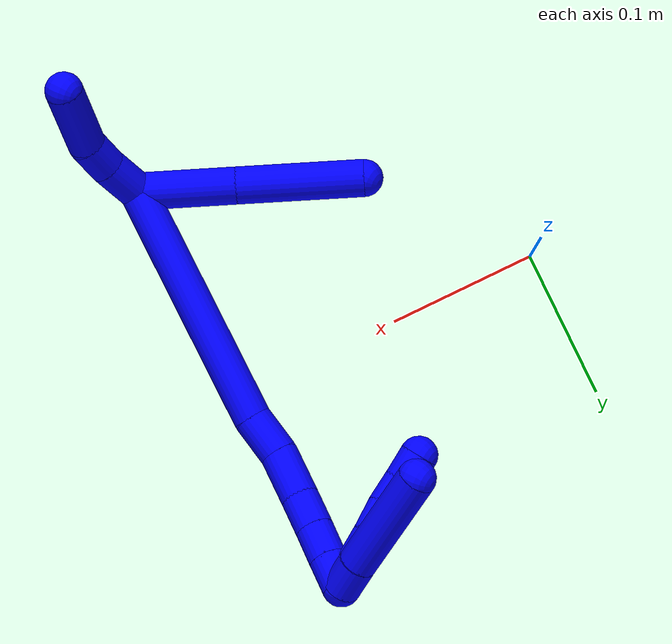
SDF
<sdf version="1.7">
 <world name="default">
  <model name="1">
   <static>0</static>
   <link name="1">
    <collision name="collision-cylinder-e_1_2_8">
     <pose>0.010722 -0.016586 -0.025929 2.57252 0.335211 1.04891</pose>
     <geometry><cylinder><radius>0.0125</radius><length>0.065188</length></cylinder></geometry>
     <surface>
      <friction><ode><mu>1.16</mu><mu2>1.16</mu2><slip1>0</slip1><slip2>0</slip2></ode></friction>
      <contact><ode><kp>1e+06</kp><kd>1</kd><max_vel>0</max_vel><min_depth>0.001</min_depth></ode></contact>
     </surface>
    </collision>
    <visual name="visual-cylinder-e_1_2_8">
     <pose>0.010722 -0.016586 -0.025929 2.57252 0.335211 1.04891</pose>
     <geometry><cylinder><radius>0.0125</radius><length>0.065188</length></cylinder></geometry>
     <material><ambient>0 0 1 1</ambient></material>
    </visual>
    <collision name="collision-cylinder-e_2_8_6">
     <pose>0.03364 -0.054523 -0.086407 2.58805 0.291712 0.954527</pose>
     <geometry><cylinder><radius>0.0125</radius><length>0.084812</length></cylinder></geometry>
     <surface>
      <friction><ode><mu>1.16</mu><mu2>1.16</mu2><slip1>0</slip1><slip2>0</slip2></ode></friction>
      <contact><ode><kp>1e+06</kp><kd>1</kd><max_vel>0</max_vel><min_depth>0.001</min_depth></ode></contact>
     </surface>
    </collision>
    <visual name="visual-cylinder-e_2_8_6">
     <pose>0.03364 -0.054523 -0.086407 2.58805 0.291712 0.954527</pose>
     <geometry><cylinder><radius>0.0125</radius><length>0.084812</length></cylinder></geometry>
     <material><ambient>0 0 1 1</ambient></material>
    </visual>
    <collision name="collision-cylinder-e_1_2_9">
     <pose>-0.012443 -0.002572 0.007745 0.320675 -0.990285 -0.174226</pose>
     <geometry><cylinder><radius>0.0125</radius><length>0.029761</length></cylinder></geometry>
     <surface>
      <friction><ode><mu>1.16</mu><mu2>1.16</mu2><slip1>0</slip1><slip2>0</slip2></ode></friction>
      <contact><ode><kp>1e+06</kp><kd>1</kd><max_vel>0</max_vel><min_depth>0.001</min_depth></ode></contact>
     </surface>
    </collision>
    <visual name="visual-cylinder-e_1_2_9">
     <pose>-0.012443 -0.002572 0.007745 0.320675 -0.990285 -0.174226</pose>
     <geometry><cylinder><radius>0.0125</radius><length>0.029761</length></cylinder></geometry>
     <material><ambient>0 0 1 1</ambient></material>
    </visual>
    <collision name="collision-cylinder-e_2_9_10">
     <pose>-0.03512 -0.008016 0.020112 0.55586 -1.08221 -0.339607</pose>
     <geometry><cylinder><radius>0.0125</radius><length>0.023182</length></cylinder></geometry>
     <surface>
      <friction><ode><mu>1.16</mu><mu2>1.16</mu2><slip1>0</slip1><slip2>0</slip2></ode></friction>
      <contact><ode><kp>1e+06</kp><kd>1</kd><max_vel>0</max_vel><min_depth>0.001</min_depth></ode></contact>
     </surface>
    </collision>
    <visual name="visual-cylinder-e_2_9_10">
     <pose>-0.03512 -0.008016 0.020112 0.55586 -1.08221 -0.339607</pose>
     <geometry><cylinder><radius>0.0125</radius><length>0.023182</length></cylinder></geometry>
     <material><ambient>0 0 1 1</ambient></material>
    </visual>
    <collision name="collision-cylinder-e_3_10_5">
     <pose>-0.065534 -0.021956 0.029619 1.15513 -1.03063 -0.707164</pose>
     <geometry><cylinder><radius>0.0125</radius><length>0.047057</length></cylinder></geometry>
     <surface>
      <friction><ode><mu>1.16</mu><mu2>1.16</mu2><slip1>0</slip1><slip2>0</slip2></ode></friction>
      <contact><ode><kp>1e+06</kp><kd>1</kd><max_vel>0</max_vel><min_depth>0.001</min_depth></ode></contact>
     </surface>
    </collision>
    <visual name="visual-cylinder-e_3_10_5">
     <pose>-0.065534 -0.021956 0.029619 1.15513 -1.03063 -0.707164</pose>
     <geometry><cylinder><radius>0.0125</radius><length>0.047057</length></cylinder></geometry>
     <material><ambient>0 0 1 1</ambient></material>
    </visual>
    <collision name="collision-cylinder-e_1_2_11">
     <pose>0.021866 0.049439 -0.064659 -2.4888 0.262451 -0.743549</pose>
     <geometry><cylinder><radius>0.0125</radius><length>0.16856</length></cylinder></geometry>
     <surface>
      <friction><ode><mu>1.16</mu><mu2>1.16</mu2><slip1>0</slip1><slip2>0</slip2></ode></friction>
      <contact><ode><kp>1e+06</kp><kd>1</kd><max_vel>0</max_vel><min_depth>0.001</min_depth></ode></contact>
     </surface>
    </collision>
    <visual name="visual-cylinder-e_1_2_11">
     <pose>0.021866 0.049439 -0.064659 -2.4888 0.262451 -0.743549</pose>
     <geometry><cylinder><radius>0.0125</radius><length>0.16856</length></cylinder></geometry>
     <material><ambient>0 0 1 1</ambient></material>
    </visual>
    <collision name="collision-cylinder-e_2_11_12">
     <pose>0.046587 0.10518 -0.142219 -2.68725 0.196236 -0.80514</pose>
     <geometry><cylinder><radius>0.0125</radius><length>0.029277</length></cylinder></geometry>
     <surface>
      <friction><ode><mu>1.16</mu><mu2>1.16</mu2><slip1>0</slip1><slip2>0</slip2></ode></friction>
      <contact><ode><kp>1e+06</kp><kd>1</kd><max_vel>0</max_vel><min_depth>0.001</min_depth></ode></contact>
     </surface>
    </collision>
    <visual name="visual-cylinder-e_2_11_12">
     <pose>0.046587 0.10518 -0.142219 -2.68725 0.196236 -0.80514</pose>
     <geometry><cylinder><radius>0.0125</radius><length>0.029277</length></cylinder></geometry>
     <material><ambient>0 0 1 1</ambient></material>
    </visual>
    <collision name="collision-cylinder-e_3_12_13">
     <pose>0.049496 0.120989 -0.168907 -2.53785 0.003298 -0.010591</pose>
     <geometry><cylinder><radius>0.0125</radius><length>0.033496</length></cylinder></geometry>
     <surface>
      <friction><ode><mu>1.16</mu><mu2>1.16</mu2><slip1>0</slip1><slip2>0</slip2></ode></friction>
      <contact><ode><kp>1e+06</kp><kd>1</kd><max_vel>0</max_vel><min_depth>0.001</min_depth></ode></contact>
     </surface>
    </collision>
    <visual name="visual-cylinder-e_3_12_13">
     <pose>0.049496 0.120989 -0.168907 -2.53785 0.003298 -0.010591</pose>
     <geometry><cylinder><radius>0.0125</radius><length>0.033496</length></cylinder></geometry>
     <material><ambient>0 0 1 1</ambient></material>
    </visual>
    <collision name="collision-cylinder-e_4_13_14">
     <pose>0.048449 0.137101 -0.192585 -2.55291 -0.092456 0.302868</pose>
     <geometry><cylinder><radius>0.0125</radius><length>0.023888</length></cylinder></geometry>
     <surface>
      <friction><ode><mu>1.16</mu><mu2>1.16</mu2><slip1>0</slip1><slip2>0</slip2></ode></friction>
      <contact><ode><kp>1e+06</kp><kd>1</kd><max_vel>0</max_vel><min_depth>0.001</min_depth></ode></contact>
     </surface>
    </collision>
    <visual name="visual-cylinder-e_4_13_14">
     <pose>0.048449 0.137101 -0.192585 -2.55291 -0.092456 0.302868</pose>
     <geometry><cylinder><radius>0.0125</radius><length>0.023888</length></cylinder></geometry>
     <material><ambient>0 0 1 1</ambient></material>
    </visual>
    <collision name="collision-cylinder-e_5_14_15">
     <pose>0.046068 0.150119 -0.211874 -2.54265 -0.111864 0.358784</pose>
     <geometry><cylinder><radius>0.0125</radius><length>0.022899</length></cylinder></geometry>
     <surface>
      <friction><ode><mu>1.16</mu><mu2>1.16</mu2><slip1>0</slip1><slip2>0</slip2></ode></friction>
      <contact><ode><kp>1e+06</kp><kd>1</kd><max_vel>0</max_vel><min_depth>0.001</min_depth></ode></contact>
     </surface>
    </collision>
    <visual name="visual-cylinder-e_5_14_15">
     <pose>0.046068 0.150119 -0.211874 -2.54265 -0.111864 0.358784</pose>
     <geometry><cylinder><radius>0.0125</radius><length>0.022899</length></cylinder></geometry>
     <material><ambient>0 0 1 1</ambient></material>
    </visual>
    <collision name="collision-cylinder-e_6_15_1">
     <pose>0.043495 0.16254 -0.230322 -2.55567 -0.118679 0.388927</pose>
     <geometry><cylinder><radius>0.0125</radius><length>0.02188</length></cylinder></geometry>
     <surface>
      <friction><ode><mu>1.16</mu><mu2>1.16</mu2><slip1>0</slip1><slip2>0</slip2></ode></friction>
      <contact><ode><kp>1e+06</kp><kd>1</kd><max_vel>0</max_vel><min_depth>0.001</min_depth></ode></contact>
     </surface>
    </collision>
    <visual name="visual-cylinder-e_6_15_1">
     <pose>0.043495 0.16254 -0.230322 -2.55567 -0.118679 0.388927</pose>
     <geometry><cylinder><radius>0.0125</radius><length>0.02188</length></cylinder></geometry>
     <material><ambient>0 0 1 1</ambient></material>
    </visual>
    <collision name="collision-cylinder-e_1_1_16">
     <pose>0.036513 0.158783 -0.242602 1.89016 -0.505043 -0.685969</pose>
     <geometry><cylinder><radius>0.0125</radius><length>0.023503</length></cylinder></geometry>
     <surface>
      <friction><ode><mu>1.16</mu><mu2>1.16</mu2><slip1>0</slip1><slip2>0</slip2></ode></friction>
      <contact><ode><kp>1e+06</kp><kd>1</kd><max_vel>0</max_vel><min_depth>0.001</min_depth></ode></contact>
     </surface>
    </collision>
    <visual name="visual-cylinder-e_1_1_16">
     <pose>0.036513 0.158783 -0.242602 1.89016 -0.505043 -0.685969</pose>
     <geometry><cylinder><radius>0.0125</radius><length>0.023503</length></cylinder></geometry>
     <material><ambient>0 0 1 1</ambient></material>
    </visual>
    <collision name="collision-cylinder-e_2_16_4">
     <pose>0.014012 0.116498 -0.256905 1.89899 -0.455183 -0.625799</pose>
     <geometry><cylinder><radius>0.0125</radius><length>0.076497</length></cylinder></geometry>
     <surface>
      <friction><ode><mu>1.16</mu><mu2>1.16</mu2><slip1>0</slip1><slip2>0</slip2></ode></friction>
      <contact><ode><kp>1e+06</kp><kd>1</kd><max_vel>0</max_vel><min_depth>0.001</min_depth></ode></contact>
     </surface>
    </collision>
    <visual name="visual-cylinder-e_2_16_4">
     <pose>0.014012 0.116498 -0.256905 1.89899 -0.455183 -0.625799</pose>
     <geometry><cylinder><radius>0.0125</radius><length>0.076497</length></cylinder></geometry>
     <material><ambient>0 0 1 1</ambient></material>
    </visual>
    <collision name="collision-cylinder-e_1_1_17">
     <pose>0.044695 0.149729 -0.239469 1.57589 0.131831 0.132503</pose>
     <geometry><cylinder><radius>0.0125</radius><length>0.037966</length></cylinder></geometry>
     <surface>
      <friction><ode><mu>1.16</mu><mu2>1.16</mu2><slip1>0</slip1><slip2>0</slip2></ode></friction>
      <contact><ode><kp>1e+06</kp><kd>1</kd><max_vel>0</max_vel><min_depth>0.001</min_depth></ode></contact>
     </surface>
    </collision>
    <visual name="visual-cylinder-e_1_1_17">
     <pose>0.044695 0.149729 -0.239469 1.57589 0.131831 0.132503</pose>
     <geometry><cylinder><radius>0.0125</radius><length>0.037966</length></cylinder></geometry>
     <material><ambient>0 0 1 1</ambient></material>
    </visual>
    <collision name="collision-cylinder-e_2_17_18">
     <pose>0.050526 0.1205 -0.238359 1.45551 0.308162 0.274983</pose>
     <geometry><cylinder><radius>0.0125</radius><length>0.021998</length></cylinder></geometry>
     <surface>
      <friction><ode><mu>1.16</mu><mu2>1.16</mu2><slip1>0</slip1><slip2>0</slip2></ode></friction>
      <contact><ode><kp>1e+06</kp><kd>1</kd><max_vel>0</max_vel><min_depth>0.001</min_depth></ode></contact>
     </surface>
    </collision>
    <visual name="visual-cylinder-e_2_17_18">
     <pose>0.050526 0.1205 -0.238359 1.45551 0.308162 0.274983</pose>
     <geometry><cylinder><radius>0.0125</radius><length>0.021998</length></cylinder></geometry>
     <material><ambient>0 0 1 1</ambient></material>
    </visual>
    <collision name="collision-cylinder-e_3_18_19">
     <pose>0.055365 0.100202 -0.237657 1.62169 0.150671 0.158508</pose>
     <geometry><cylinder><radius>0.0125</radius><length>0.020026</length></cylinder></geometry>
     <surface>
      <friction><ode><mu>1.16</mu><mu2>1.16</mu2><slip1>0</slip1><slip2>0</slip2></ode></friction>
      <contact><ode><kp>1e+06</kp><kd>1</kd><max_vel>0</max_vel><min_depth>0.001</min_depth></ode></contact>
     </surface>
    </collision>
    <visual name="visual-cylinder-e_3_18_19">
     <pose>0.055365 0.100202 -0.237657 1.62169 0.150671 0.158508</pose>
     <geometry><cylinder><radius>0.0125</radius><length>0.020026</length></cylinder></geometry>
     <material><ambient>0 0 1 1</ambient></material>
    </visual>
    <collision name="collision-cylinder-e_4_19_3">
     <pose>0.056777 0.080344 -0.238984 1.65317 -0.009083 -0.009864</pose>
     <geometry><cylinder><radius>0.0125</radius><length>0.02001</length></cylinder></geometry>
     <surface>
      <friction><ode><mu>1.16</mu><mu2>1.16</mu2><slip1>0</slip1><slip2>0</slip2></ode></friction>
      <contact><ode><kp>1e+06</kp><kd>1</kd><max_vel>0</max_vel><min_depth>0.001</min_depth></ode></contact>
     </surface>
    </collision>
    <visual name="visual-cylinder-e_4_19_3">
     <pose>0.056777 0.080344 -0.238984 1.65317 -0.009083 -0.009864</pose>
     <geometry><cylinder><radius>0.0125</radius><length>0.02001</length></cylinder></geometry>
     <material><ambient>0 0 1 1</ambient></material>
    </visual>
    <collision name="collision-sphere-3">
     <pose>0.056686 0.070374 -0.239807 0 -0 0</pose>
     <geometry><sphere><radius>0.0125</radius></sphere></geometry>
     <surface>
      <friction><ode><mu>1.16</mu><mu2>1.16</mu2><slip1>0</slip1><slip2>0</slip2></ode></friction>
      <contact><ode><kp>1e+06</kp><kd>1</kd><max_vel>0</max_vel><min_depth>0.001</min_depth></ode></contact>
     </surface>
    </collision>
    <visual name="visual-sphere-3">
     <pose>0.056686 0.070374 -0.239807 0 -0 0</pose>
     <geometry><sphere><radius>0.0125</radius></sphere></geometry>
     <material><ambient>0 0 1 1</ambient></material>
    </visual>
    <collision name="collision-sphere-19">
     <pose>0.056868 0.090315 -0.238161 0 -0 0</pose>
     <geometry><sphere><radius>0.0125</radius></sphere></geometry>
     <surface>
      <friction><ode><mu>1.16</mu><mu2>1.16</mu2><slip1>0</slip1><slip2>0</slip2></ode></friction>
      <contact><ode><kp>1e+06</kp><kd>1</kd><max_vel>0</max_vel><min_depth>0.001</min_depth></ode></contact>
     </surface>
    </collision>
    <visual name="visual-sphere-19">
     <pose>0.056868 0.090315 -0.238161 0 -0 0</pose>
     <geometry><sphere><radius>0.0125</radius></sphere></geometry>
     <material><ambient>0 0 1 1</ambient></material>
    </visual>
    <collision name="collision-sphere-5">
     <pose>-0.085713 -0.033026 0.034505 0 -0 0</pose>
     <geometry><sphere><radius>0.0125</radius></sphere></geometry>
     <surface>
      <friction><ode><mu>1.16</mu><mu2>1.16</mu2><slip1>0</slip1><slip2>0</slip2></ode></friction>
      <contact><ode><kp>1e+06</kp><kd>1</kd><max_vel>0</max_vel><min_depth>0.001</min_depth></ode></contact>
     </surface>
    </collision>
    <visual name="visual-sphere-5">
     <pose>-0.085713 -0.033026 0.034505 0 -0 0</pose>
     <geometry><sphere><radius>0.0125</radius></sphere></geometry>
     <material><ambient>0 0 1 1</ambient></material>
    </visual>
    <collision name="collision-sphere-10">
     <pose>-0.045355 -0.010887 0.024733 0 -0 0</pose>
     <geometry><sphere><radius>0.0125</radius></sphere></geometry>
     <surface>
      <friction><ode><mu>1.16</mu><mu2>1.16</mu2><slip1>0</slip1><slip2>0</slip2></ode></friction>
      <contact><ode><kp>1e+06</kp><kd>1</kd><max_vel>0</max_vel><min_depth>0.001</min_depth></ode></contact>
     </surface>
    </collision>
    <visual name="visual-sphere-10">
     <pose>-0.045355 -0.010887 0.024733 0 -0 0</pose>
     <geometry><sphere><radius>0.0125</radius></sphere></geometry>
     <material><ambient>0 0 1 1</ambient></material>
    </visual>
    <collision name="collision-sphere-6">
     <pose>0.045836 -0.075874 -0.120957 0 -0 0</pose>
     <geometry><sphere><radius>0.0125</radius></sphere></geometry>
     <surface>
      <friction><ode><mu>1.16</mu><mu2>1.16</mu2><slip1>0</slip1><slip2>0</slip2></ode></friction>
      <contact><ode><kp>1e+06</kp><kd>1</kd><max_vel>0</max_vel><min_depth>0.001</min_depth></ode></contact>
     </surface>
    </collision>
    <visual name="visual-sphere-6">
     <pose>0.045836 -0.075874 -0.120957 0 -0 0</pose>
     <geometry><sphere><radius>0.0125</radius></sphere></geometry>
     <material><ambient>0 0 1 1</ambient></material>
    </visual>
    <collision name="collision-sphere-9">
     <pose>-0.024885 -0.005145 0.01549 0 -0 0</pose>
     <geometry><sphere><radius>0.0125</radius></sphere></geometry>
     <surface>
      <friction><ode><mu>1.16</mu><mu2>1.16</mu2><slip1>0</slip1><slip2>0</slip2></ode></friction>
      <contact><ode><kp>1e+06</kp><kd>1</kd><max_vel>0</max_vel><min_depth>0.001</min_depth></ode></contact>
     </surface>
    </collision>
    <visual name="visual-sphere-9">
     <pose>-0.024885 -0.005145 0.01549 0 -0 0</pose>
     <geometry><sphere><radius>0.0125</radius></sphere></geometry>
     <material><ambient>0 0 1 1</ambient></material>
    </visual>
    <collision name="collision-sphere-2">
     <geometry><sphere><radius>0.0125</radius></sphere></geometry>
     <surface>
      <friction><ode><mu>1.16</mu><mu2>1.16</mu2><slip1>0</slip1><slip2>0</slip2></ode></friction>
      <contact><ode><kp>1e+06</kp><kd>1</kd><max_vel>0</max_vel><min_depth>0.001</min_depth></ode></contact>
     </surface>
    </collision>
    <visual name="visual-sphere-2">
     <geometry><sphere><radius>0.0125</radius></sphere></geometry>
     <material><ambient>0 0 1 1</ambient></material>
    </visual>
    <collision name="collision-sphere-8">
     <pose>0.021445 -0.033171 -0.051858 0 -0 0</pose>
     <geometry><sphere><radius>0.0125</radius></sphere></geometry>
     <surface>
      <friction><ode><mu>1.16</mu><mu2>1.16</mu2><slip1>0</slip1><slip2>0</slip2></ode></friction>
      <contact><ode><kp>1e+06</kp><kd>1</kd><max_vel>0</max_vel><min_depth>0.001</min_depth></ode></contact>
     </surface>
    </collision>
    <visual name="visual-sphere-8">
     <pose>0.021445 -0.033171 -0.051858 0 -0 0</pose>
     <geometry><sphere><radius>0.0125</radius></sphere></geometry>
     <material><ambient>0 0 1 1</ambient></material>
    </visual>
    <collision name="collision-sphere-11">
     <pose>0.043733 0.098878 -0.129318 0 -0 0</pose>
     <geometry><sphere><radius>0.0125</radius></sphere></geometry>
     <surface>
      <friction><ode><mu>1.16</mu><mu2>1.16</mu2><slip1>0</slip1><slip2>0</slip2></ode></friction>
      <contact><ode><kp>1e+06</kp><kd>1</kd><max_vel>0</max_vel><min_depth>0.001</min_depth></ode></contact>
     </surface>
    </collision>
    <visual name="visual-sphere-11">
     <pose>0.043733 0.098878 -0.129318 0 -0 0</pose>
     <geometry><sphere><radius>0.0125</radius></sphere></geometry>
     <material><ambient>0 0 1 1</ambient></material>
    </visual>
    <collision name="collision-sphere-12">
     <pose>0.049441 0.111481 -0.15512 0 -0 0</pose>
     <geometry><sphere><radius>0.0125</radius></sphere></geometry>
     <surface>
      <friction><ode><mu>1.16</mu><mu2>1.16</mu2><slip1>0</slip1><slip2>0</slip2></ode></friction>
      <contact><ode><kp>1e+06</kp><kd>1</kd><max_vel>0</max_vel><min_depth>0.001</min_depth></ode></contact>
     </surface>
    </collision>
    <visual name="visual-sphere-12">
     <pose>0.049441 0.111481 -0.15512 0 -0 0</pose>
     <geometry><sphere><radius>0.0125</radius></sphere></geometry>
     <material><ambient>0 0 1 1</ambient></material>
    </visual>
    <collision name="collision-sphere-13">
     <pose>0.049552 0.130497 -0.182694 0 -0 0</pose>
     <geometry><sphere><radius>0.0125</radius></sphere></geometry>
     <surface>
      <friction><ode><mu>1.16</mu><mu2>1.16</mu2><slip1>0</slip1><slip2>0</slip2></ode></friction>
      <contact><ode><kp>1e+06</kp><kd>1</kd><max_vel>0</max_vel><min_depth>0.001</min_depth></ode></contact>
     </surface>
    </collision>
    <visual name="visual-sphere-13">
     <pose>0.049552 0.130497 -0.182694 0 -0 0</pose>
     <geometry><sphere><radius>0.0125</radius></sphere></geometry>
     <material><ambient>0 0 1 1</ambient></material>
    </visual>
    <collision name="collision-sphere-14">
     <pose>0.047346 0.143705 -0.202476 0 -0 0</pose>
     <geometry><sphere><radius>0.0125</radius></sphere></geometry>
     <surface>
      <friction><ode><mu>1.16</mu><mu2>1.16</mu2><slip1>0</slip1><slip2>0</slip2></ode></friction>
      <contact><ode><kp>1e+06</kp><kd>1</kd><max_vel>0</max_vel><min_depth>0.001</min_depth></ode></contact>
     </surface>
    </collision>
    <visual name="visual-sphere-14">
     <pose>0.047346 0.143705 -0.202476 0 -0 0</pose>
     <geometry><sphere><radius>0.0125</radius></sphere></geometry>
     <material><ambient>0 0 1 1</ambient></material>
    </visual>
    <collision name="collision-sphere-15">
     <pose>0.04479 0.156534 -0.221271 0 -0 0</pose>
     <geometry><sphere><radius>0.0125</radius></sphere></geometry>
     <surface>
      <friction><ode><mu>1.16</mu><mu2>1.16</mu2><slip1>0</slip1><slip2>0</slip2></ode></friction>
      <contact><ode><kp>1e+06</kp><kd>1</kd><max_vel>0</max_vel><min_depth>0.001</min_depth></ode></contact>
     </surface>
    </collision>
    <visual name="visual-sphere-15">
     <pose>0.04479 0.156534 -0.221271 0 -0 0</pose>
     <geometry><sphere><radius>0.0125</radius></sphere></geometry>
     <material><ambient>0 0 1 1</ambient></material>
    </visual>
    <collision name="collision-sphere-1">
     <pose>0.042199 0.168547 -0.239373 0 -0 0</pose>
     <geometry><sphere><radius>0.0125</radius></sphere></geometry>
     <surface>
      <friction><ode><mu>1.16</mu><mu2>1.16</mu2><slip1>0</slip1><slip2>0</slip2></ode></friction>
      <contact><ode><kp>1e+06</kp><kd>1</kd><max_vel>0</max_vel><min_depth>0.001</min_depth></ode></contact>
     </surface>
    </collision>
    <visual name="visual-sphere-1">
     <pose>0.042199 0.168547 -0.239373 0 -0 0</pose>
     <geometry><sphere><radius>0.0125</radius></sphere></geometry>
     <material><ambient>0 0 1 1</ambient></material>
    </visual>
    <collision name="collision-sphere-18">
     <pose>0.053862 0.110089 -0.237154 0 -0 0</pose>
     <geometry><sphere><radius>0.0125</radius></sphere></geometry>
     <surface>
      <friction><ode><mu>1.16</mu><mu2>1.16</mu2><slip1>0</slip1><slip2>0</slip2></ode></friction>
      <contact><ode><kp>1e+06</kp><kd>1</kd><max_vel>0</max_vel><min_depth>0.001</min_depth></ode></contact>
     </surface>
    </collision>
    <visual name="visual-sphere-18">
     <pose>0.053862 0.110089 -0.237154 0 -0 0</pose>
     <geometry><sphere><radius>0.0125</radius></sphere></geometry>
     <material><ambient>0 0 1 1</ambient></material>
    </visual>
    <collision name="collision-sphere-16">
     <pose>0.030827 0.149019 -0.245831 0 -0 0</pose>
     <geometry><sphere><radius>0.0125</radius></sphere></geometry>
     <surface>
      <friction><ode><mu>1.16</mu><mu2>1.16</mu2><slip1>0</slip1><slip2>0</slip2></ode></friction>
      <contact><ode><kp>1e+06</kp><kd>1</kd><max_vel>0</max_vel><min_depth>0.001</min_depth></ode></contact>
     </surface>
    </collision>
    <visual name="visual-sphere-16">
     <pose>0.030827 0.149019 -0.245831 0 -0 0</pose>
     <geometry><sphere><radius>0.0125</radius></sphere></geometry>
     <material><ambient>0 0 1 1</ambient></material>
    </visual>
    <collision name="collision-sphere-4">
     <pose>-0.002803 0.083978 -0.267978 0 -0 0</pose>
     <geometry><sphere><radius>0.0125</radius></sphere></geometry>
     <surface>
      <friction><ode><mu>1.16</mu><mu2>1.16</mu2><slip1>0</slip1><slip2>0</slip2></ode></friction>
      <contact><ode><kp>1e+06</kp><kd>1</kd><max_vel>0</max_vel><min_depth>0.001</min_depth></ode></contact>
     </surface>
    </collision>
    <visual name="visual-sphere-4">
     <pose>-0.002803 0.083978 -0.267978 0 -0 0</pose>
     <geometry><sphere><radius>0.0125</radius></sphere></geometry>
     <material><ambient>0 0 1 1</ambient></material>
    </visual>
    <collision name="collision-sphere-17">
     <pose>0.04719 0.130911 -0.239565 0 -0 0</pose>
     <geometry><sphere><radius>0.0125</radius></sphere></geometry>
     <surface>
      <friction><ode><mu>1.16</mu><mu2>1.16</mu2><slip1>0</slip1><slip2>0</slip2></ode></friction>
      <contact><ode><kp>1e+06</kp><kd>1</kd><max_vel>0</max_vel><min_depth>0.001</min_depth></ode></contact>
     </surface>
    </collision>
    <visual name="visual-sphere-17">
     <pose>0.04719 0.130911 -0.239565 0 -0 0</pose>
     <geometry><sphere><radius>0.0125</radius></sphere></geometry>
     <material><ambient>0 0 1 1</ambient></material>
    </visual>
    <inertial>
     <pose>0.021518 0.057769 -0.121828 0 -0 0</pose>
     <mass>0.75</mass>
     <inertia>
      <ixx>0.000161</ixx>
      <ixy>0</ixy>
      <ixz>0</ixz>
      <iyy>-0.000454</iyy>
      <iyz>0</iyz>
      <izz>-0.000279</izz>
     </inertia>
    </inertial>
   </link>
   <pose>0.215487 -0.150528 0.011969 -2.97944 1.19922 2.36898</pose>
  </model>
 </world>
</sdf>
